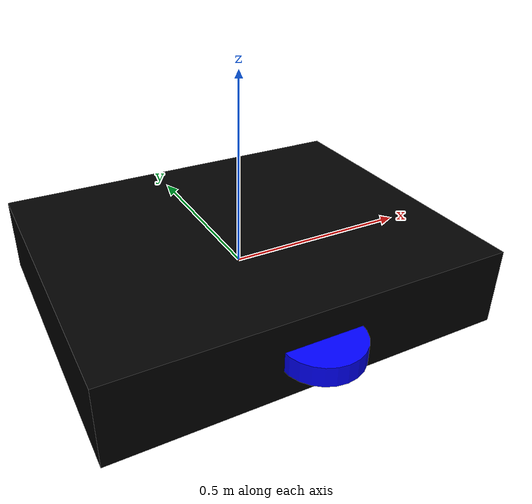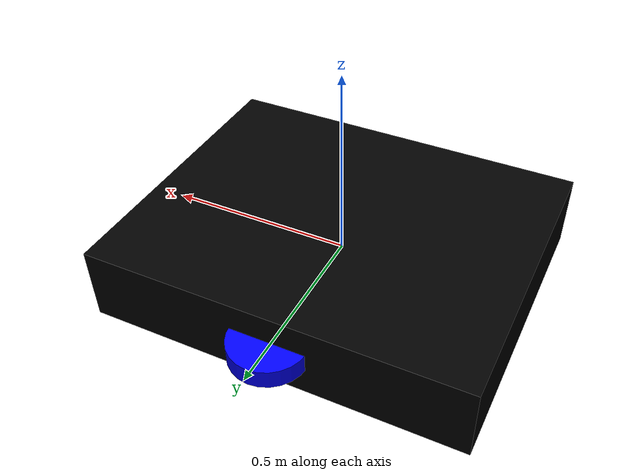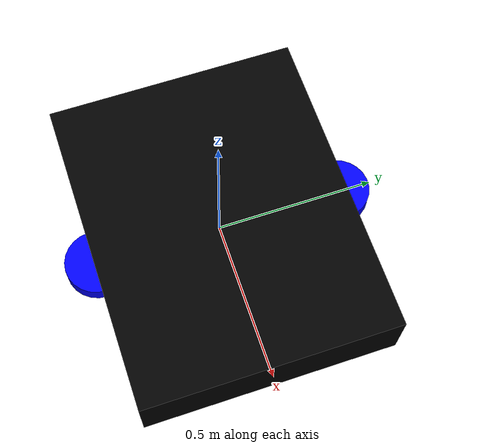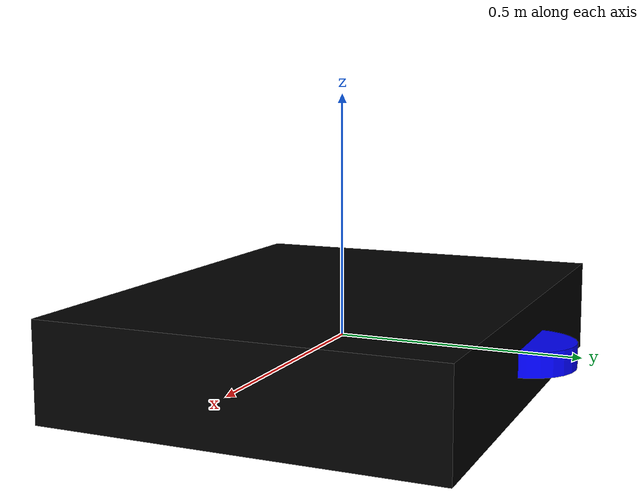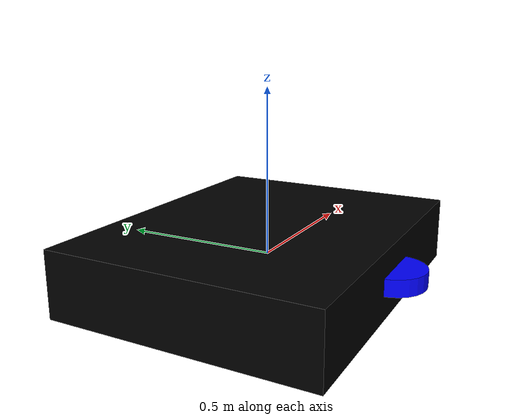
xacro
<robot xmlns:xacro="http://www.ros.org/wiki/xacro" name="mobile_robot">

  <!-- Base link -->
  <link name="base_link">
    <visual>
      <geometry><box size="1 0.8 0.2"/></geometry>
      <material name="black">
        <color rgba="0 0 0 1"/>
      </material>
    </visual>
  </link>

  <!-- Caster wheel -->
  <link name="caster_wheel_link">
    <visual>
      <geometry><cylinder radius="0.05" length="0.02"/></geometry>
      <material name="red">
        <color rgba="1 0 0 1"/>
      </material>
    </visual>
  </link>

  <!-- Connect caster to base -->
  <joint name="caster_wheel_joint" type="fixed">
    <parent link="base_link"/>
    <child link="caster_wheel_link"/>
    <origin xyz="0 0 0" rpy="0 0 0"/>
  </joint>

  <!-- Left wheel -->
  <link name="continuous_link">
    <visual>
      <geometry><cylinder radius="0.1" length="0.05"/></geometry>
      <material name="blue">
        <color rgba="0 0 1 1"/>
      </material>
    </visual>
  </link>

  <joint name="left_wheel_joint" type="continuous">
    <parent link="base_link"/>
    <child link="continuous_link"/>
    <origin xyz="0 0.39 0" rpy="0 0 0"/>
    <axis xyz="0 1 0"/>
  </joint>

  <!-- Right wheel -->
  <link name="continuous2_link">
    <visual>
      <geometry><cylinder radius="0.1" length="0.05"/></geometry>
      <material name="blue">
        <color rgba="0 0 1 1"/>
      </material>
    </visual>
  </link>

  <joint name="right_wheel_joint" type="continuous">
    <parent link="base_link"/>
    <child link="continuous2_link"/>
    <origin xyz="0 -0.39 0" rpy="0 0 0"/>
    <axis xyz="0 1 0"/>
  </joint>

</robot>
